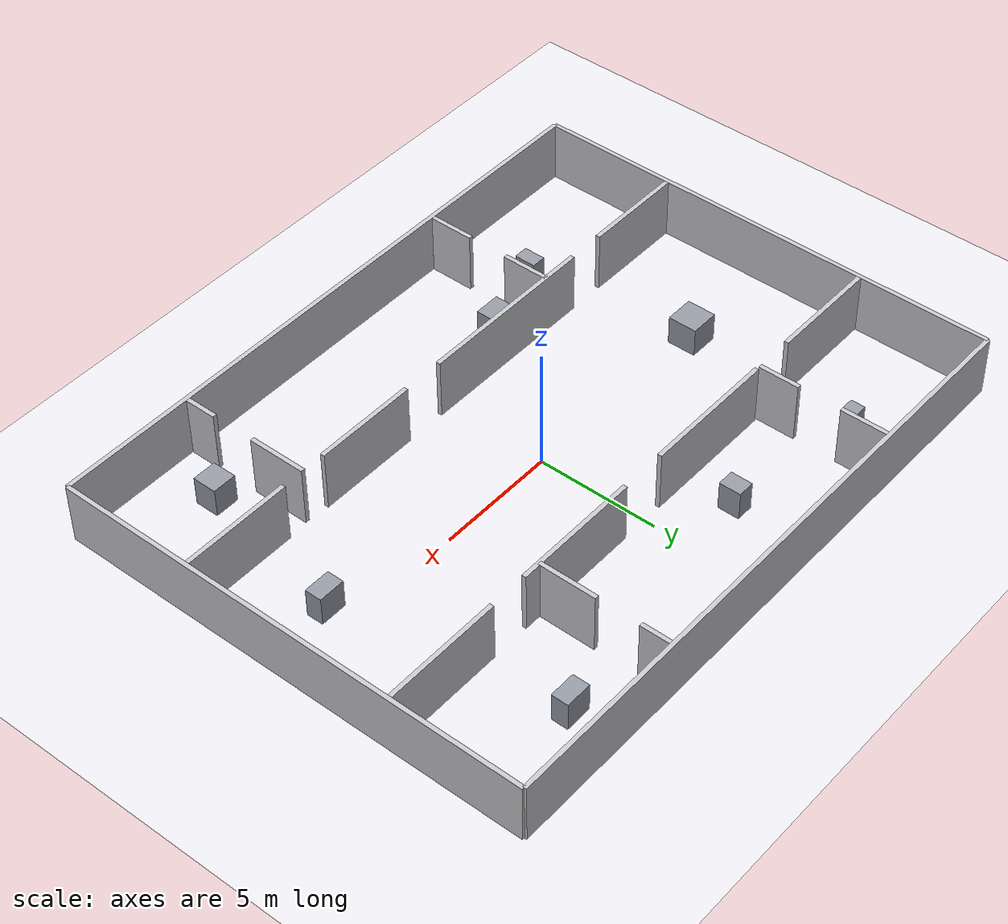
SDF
<?xml version="1.0"?>
<sdf version="1.9"><world name="new_room_world">
<plugin filename="gz-sim-physics-system" name="gz::sim::systems::Physics"/><plugin filename="gz-sim-user-commands-system" name="gz::sim::systems::UserCommands"/><plugin filename="gz-sim-scene-broadcaster-system" name="gz::sim::systems::SceneBroadcaster"/><plugin filename="gz-sim-sensors-system" name="gz::sim::systems::Sensors"><render_engine>ogre2</render_engine></plugin><plugin filename="gz-sim-imu-system" name="gz::sim::systems::Imu"/>
<physics name="new_room_realtime" type="ignored"><max_step_size>0.001</max_step_size><real_time_factor>1</real_time_factor></physics><gravity>0 0 -9.8</gravity><scene><ambient>0.85 0.85 0.87 1</ambient><background>0.68 0.68 0.71 1</background><shadows>false</shadows></scene><light name="sun" type="directional"><cast_shadows>false</cast_shadows><pose>0 0 10 0 0 0</pose><diffuse>0.95 0.95 0.95 1</diffuse><direction>-0.3 0.2 -1</direction></light>
<model name="new_room_ground"><static>true</static><link name="ground_link"><collision name="ground_collision"><geometry><plane><normal>0 0 1</normal><size>40 32</size></plane></geometry></collision><visual name="ground_visual"><geometry><plane><normal>0 0 1</normal><size>40 32</size></plane></geometry><material><ambient>0.92 0.92 0.94 1</ambient><diffuse>0.92 0.92 0.94 1</diffuse></material></visual></link></model>
<model name="mini_hospital_structure"><static>true</static><link name="structure">
<collision name="mx048_c000"><pose>0 10 1.25 0 0 0</pose><geometry><box><size>26 0.18 2.5</size></box></geometry></collision><visual name="mx048_v000"><pose>0 10 1.25 0 0 0</pose><geometry><box><size>26 0.18 2.5</size></box></geometry><material><ambient>0.78 0.78 0.80 1</ambient><diffuse>0.78 0.78 0.80 1</diffuse></material></visual>
<collision name="mx048_c001"><pose>0 -10 1.25 0 0 0</pose><geometry><box><size>26 0.18 2.5</size></box></geometry></collision><visual name="mx048_v001"><pose>0 -10 1.25 0 0 0</pose><geometry><box><size>26 0.18 2.5</size></box></geometry><material><ambient>0.78 0.78 0.80 1</ambient><diffuse>0.78 0.78 0.80 1</diffuse></material></visual>
<collision name="mx048_c002"><pose>-13 0 1.25 0 0 0</pose><geometry><box><size>0.18 20 2.5</size></box></geometry></collision><visual name="mx048_v002"><pose>-13 0 1.25 0 0 0</pose><geometry><box><size>0.18 20 2.5</size></box></geometry><material><ambient>0.78 0.78 0.80 1</ambient><diffuse>0.78 0.78 0.80 1</diffuse></material></visual>
<collision name="mx048_c003"><pose>13 0 1.25 0 0 0</pose><geometry><box><size>0.18 20 2.5</size></box></geometry></collision><visual name="mx048_v003"><pose>13 0 1.25 0 0 0</pose><geometry><box><size>0.18 20 2.5</size></box></geometry><material><ambient>0.78 0.78 0.80 1</ambient><diffuse>0.78 0.78 0.80 1</diffuse></material></visual>
<collision name="mx048_c004"><pose>-10.605 4.5 1.25 0 0 0</pose><geometry><box><size>4.61 0.18 2.5</size></box></geometry></collision><visual name="mx048_v004"><pose>-10.605 4.5 1.25 0 0 0</pose><geometry><box><size>4.61 0.18 2.5</size></box></geometry><material><ambient>0.78 0.78 0.80 1</ambient><diffuse>0.78 0.78 0.80 1</diffuse></material></visual>
<collision name="mx048_c005"><pose>-3.675 4.5 1.25 0 0 0</pose><geometry><box><size>5.65 0.18 2.5</size></box></geometry></collision><visual name="mx048_v005"><pose>-3.675 4.5 1.25 0 0 0</pose><geometry><box><size>5.65 0.18 2.5</size></box></geometry><material><ambient>0.78 0.78 0.80 1</ambient><diffuse>0.78 0.78 0.80 1</diffuse></material></visual>
<collision name="mx048_c006"><pose>3.725 4.5 1.25 0 0 0</pose><geometry><box><size>5.35 0.18 2.5</size></box></geometry></collision><visual name="mx048_v006"><pose>3.725 4.5 1.25 0 0 0</pose><geometry><box><size>5.35 0.18 2.5</size></box></geometry><material><ambient>0.78 0.78 0.80 1</ambient><diffuse>0.78 0.78 0.80 1</diffuse></material></visual>
<collision name="mx048_c007"><pose>10.455 4.5 1.25 0 0 0</pose><geometry><box><size>4.91 0.18 2.5</size></box></geometry></collision><visual name="mx048_v007"><pose>10.455 4.5 1.25 0 0 0</pose><geometry><box><size>4.91 0.18 2.5</size></box></geometry><material><ambient>0.78 0.78 0.80 1</ambient><diffuse>0.78 0.78 0.80 1</diffuse></material></visual>
<collision name="mx048_c008"><pose>-10.78 -4.4 1.25 0 0 0</pose><geometry><box><size>4.26 0.18 2.5</size></box></geometry></collision><visual name="mx048_v008"><pose>-10.78 -4.4 1.25 0 0 0</pose><geometry><box><size>4.26 0.18 2.5</size></box></geometry><material><ambient>0.78 0.78 0.80 1</ambient><diffuse>0.78 0.78 0.80 1</diffuse></material></visual>
<collision name="mx048_c009"><pose>-3.35 -4.4 1.25 0 0 0</pose><geometry><box><size>7.6 0.18 2.5</size></box></geometry></collision><visual name="mx048_v009"><pose>-3.35 -4.4 1.25 0 0 0</pose><geometry><box><size>7.6 0.18 2.5</size></box></geometry><material><ambient>0.78 0.78 0.80 1</ambient><diffuse>0.78 0.78 0.80 1</diffuse></material></visual>
<collision name="mx048_c010"><pose>4.3 -4.4 1.25 0 0 0</pose><geometry><box><size>4.3 0.18 2.5</size></box></geometry></collision><visual name="mx048_v010"><pose>4.3 -4.4 1.25 0 0 0</pose><geometry><box><size>4.3 0.18 2.5</size></box></geometry><material><ambient>0.78 0.78 0.80 1</ambient><diffuse>0.78 0.78 0.80 1</diffuse></material></visual>
<collision name="mx048_c011"><pose>10.63 -4.4 1.25 0 0 0</pose><geometry><box><size>4.56 0.18 2.5</size></box></geometry></collision><visual name="mx048_v011"><pose>10.63 -4.4 1.25 0 0 0</pose><geometry><box><size>4.56 0.18 2.5</size></box></geometry><material><ambient>0.78 0.78 0.80 1</ambient><diffuse>0.78 0.78 0.80 1</diffuse></material></visual>
<collision name="mx048_c012"><pose>-6.7 5.35 1.25 0 0 0</pose><geometry><box><size>0.18 1.7 2.5</size></box></geometry></collision><visual name="mx048_v012"><pose>-6.7 5.35 1.25 0 0 0</pose><geometry><box><size>0.18 1.7 2.5</size></box></geometry><material><ambient>0.78 0.78 0.80 1</ambient><diffuse>0.78 0.78 0.80 1</diffuse></material></visual>
<collision name="mx048_c013"><pose>-6.7 8.955 1.25 0 0 0</pose><geometry><box><size>0.18 1.91 2.5</size></box></geometry></collision><visual name="mx048_v013"><pose>-6.7 8.955 1.25 0 0 0</pose><geometry><box><size>0.18 1.91 2.5</size></box></geometry><material><ambient>0.78 0.78 0.80 1</ambient><diffuse>0.78 0.78 0.80 1</diffuse></material></visual>
<collision name="mx048_c014"><pose>5.6 5.7 1.25 0 0 0</pose><geometry><box><size>0.18 2.4 2.5</size></box></geometry></collision><visual name="mx048_v014"><pose>5.6 5.7 1.25 0 0 0</pose><geometry><box><size>0.18 2.4 2.5</size></box></geometry><material><ambient>0.78 0.78 0.80 1</ambient><diffuse>0.78 0.78 0.80 1</diffuse></material></visual>
<collision name="mx048_c015"><pose>5.6 9.305 1.25 0 0 0</pose><geometry><box><size>0.18 1.21 2.5</size></box></geometry></collision><visual name="mx048_v015"><pose>5.6 9.305 1.25 0 0 0</pose><geometry><box><size>0.18 1.21 2.5</size></box></geometry><material><ambient>0.78 0.78 0.80 1</ambient><diffuse>0.78 0.78 0.80 1</diffuse></material></visual>
<collision name="mx048_c016"><pose>-5.6 -8.98 1.25 0 0 0</pose><geometry><box><size>0.18 1.86 2.5</size></box></geometry></collision><visual name="mx048_v016"><pose>-5.6 -8.98 1.25 0 0 0</pose><geometry><box><size>0.18 1.86 2.5</size></box></geometry><material><ambient>0.78 0.78 0.80 1</ambient><diffuse>0.78 0.78 0.80 1</diffuse></material></visual>
<collision name="mx048_c017"><pose>-5.6 -5.375 1.25 0 0 0</pose><geometry><box><size>0.18 1.95 2.5</size></box></geometry></collision><visual name="mx048_v017"><pose>-5.6 -5.375 1.25 0 0 0</pose><geometry><box><size>0.18 1.95 2.5</size></box></geometry><material><ambient>0.78 0.78 0.80 1</ambient><diffuse>0.78 0.78 0.80 1</diffuse></material></visual>
<collision name="mx048_c018"><pose>7.4 -9.255 1.25 0 0 0</pose><geometry><box><size>0.18 1.31 2.5</size></box></geometry></collision><visual name="mx048_v018"><pose>7.4 -9.255 1.25 0 0 0</pose><geometry><box><size>0.18 1.31 2.5</size></box></geometry><material><ambient>0.78 0.78 0.80 1</ambient><diffuse>0.78 0.78 0.80 1</diffuse></material></visual>
<collision name="mx048_c019"><pose>7.4 -5.6 1.25 0 0 0</pose><geometry><box><size>0.18 2.4 2.5</size></box></geometry></collision><visual name="mx048_v019"><pose>7.4 -5.6 1.25 0 0 0</pose><geometry><box><size>0.18 2.4 2.5</size></box></geometry><material><ambient>0.78 0.78 0.80 1</ambient><diffuse>0.78 0.78 0.80 1</diffuse></material></visual>
<collision name="mx048_c020"><pose>-8.2 7.6 0.6 0 0 0</pose><geometry><box><size>0.6 0.6 1.2</size></box></geometry></collision><visual name="mx048_v020"><pose>-8.2 7.6 0.6 0 0 0</pose><geometry><box><size>0.6 0.6 1.2</size></box></geometry><material><ambient>0.58 0.60 0.64 1</ambient><diffuse>0.58 0.60 0.64 1</diffuse></material></visual>
<collision name="mx048_c021"><pose>-2.5 6.6 0.6 0 0 0</pose><geometry><box><size>0.7 0.9 1.2</size></box></geometry></collision><visual name="mx048_v021"><pose>-2.5 6.6 0.6 0 0 0</pose><geometry><box><size>0.7 0.9 1.2</size></box></geometry><material><ambient>0.58 0.60 0.64 1</ambient><diffuse>0.58 0.60 0.64 1</diffuse></material></visual>
<collision name="mx048_c022"><pose>8.3 8 0.6 0 0 0</pose><geometry><box><size>1.1 0.7 1.2</size></box></geometry></collision><visual name="mx048_v022"><pose>8.3 8 0.6 0 0 0</pose><geometry><box><size>1.1 0.7 1.2</size></box></geometry><material><ambient>0.58 0.60 0.64 1</ambient><diffuse>0.58 0.60 0.64 1</diffuse></material></visual>
<collision name="mx048_c023"><pose>-7.3 -6.6 0.6 0 0 0</pose><geometry><box><size>0.6 0.9 1.2</size></box></geometry></collision><visual name="mx048_v023"><pose>-7.3 -6.6 0.6 0 0 0</pose><geometry><box><size>0.6 0.9 1.2</size></box></geometry><material><ambient>0.58 0.60 0.64 1</ambient><diffuse>0.58 0.60 0.64 1</diffuse></material></visual>
<collision name="mx048_c024"><pose>-4.2 -5.6 0.6 0 0 0</pose><geometry><box><size>1.1 1 1.2</size></box></geometry></collision><visual name="mx048_v024"><pose>-4.2 -5.6 0.6 0 0 0</pose><geometry><box><size>1.1 1 1.2</size></box></geometry><material><ambient>0.58 0.60 0.64 1</ambient><diffuse>0.58 0.60 0.64 1</diffuse></material></visual>
<collision name="mx048_c025"><pose>8.7 -7.5 0.6 0 0 0</pose><geometry><box><size>1 1 1.2</size></box></geometry></collision><visual name="mx048_v025"><pose>8.7 -7.5 0.6 0 0 0</pose><geometry><box><size>1 1 1.2</size></box></geometry><material><ambient>0.58 0.60 0.64 1</ambient><diffuse>0.58 0.60 0.64 1</diffuse></material></visual>
<collision name="mx048_c026"><pose>-8.5 0.2 0.6 0 0 0</pose><geometry><box><size>1.2 1.2 1.2</size></box></geometry></collision><visual name="mx048_v026"><pose>-8.5 0.2 0.6 0 0 0</pose><geometry><box><size>1.2 1.2 1.2</size></box></geometry><material><ambient>0.58 0.60 0.64 1</ambient><diffuse>0.58 0.60 0.64 1</diffuse></material></visual>
<collision name="mx048_c027"><pose>10 -1.1 0.6 0 0 0</pose><geometry><box><size>1.1 0.7 1.2</size></box></geometry></collision><visual name="mx048_v027"><pose>10 -1.1 0.6 0 0 0</pose><geometry><box><size>1.1 0.7 1.2</size></box></geometry><material><ambient>0.58 0.60 0.64 1</ambient><diffuse>0.58 0.60 0.64 1</diffuse></material></visual>
</link></model></world></sdf>
